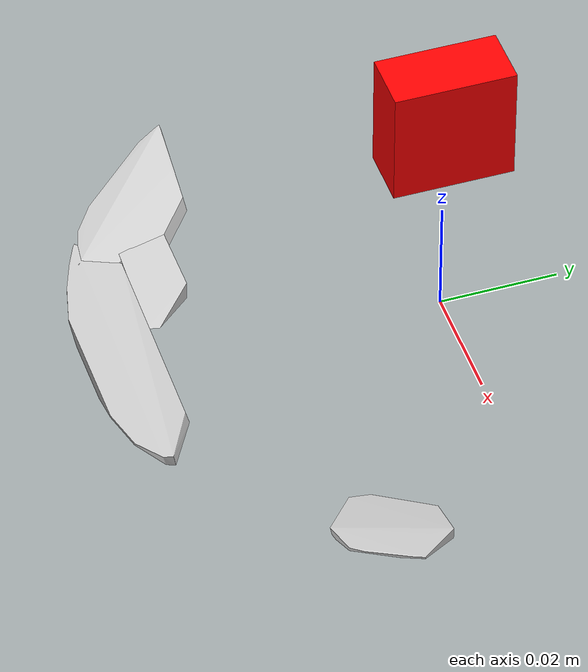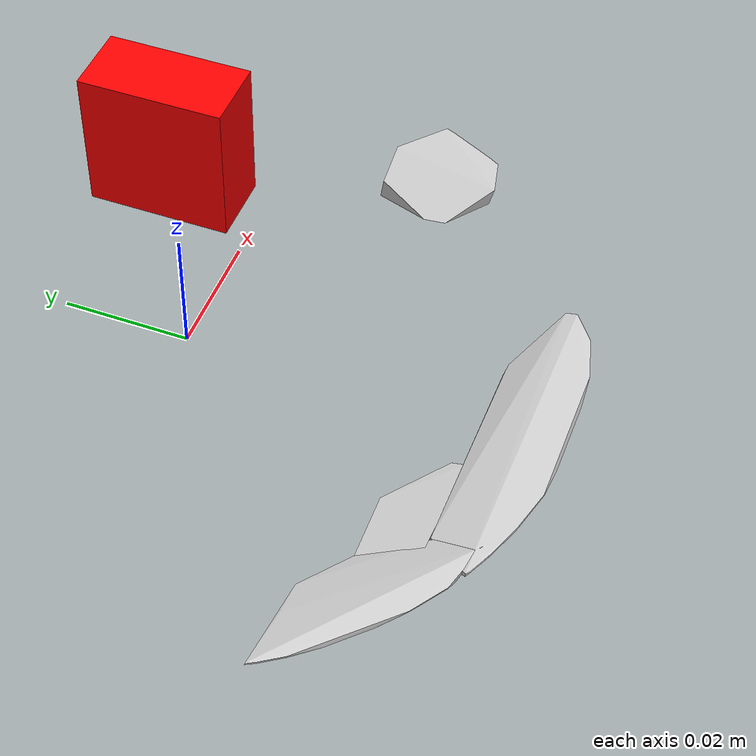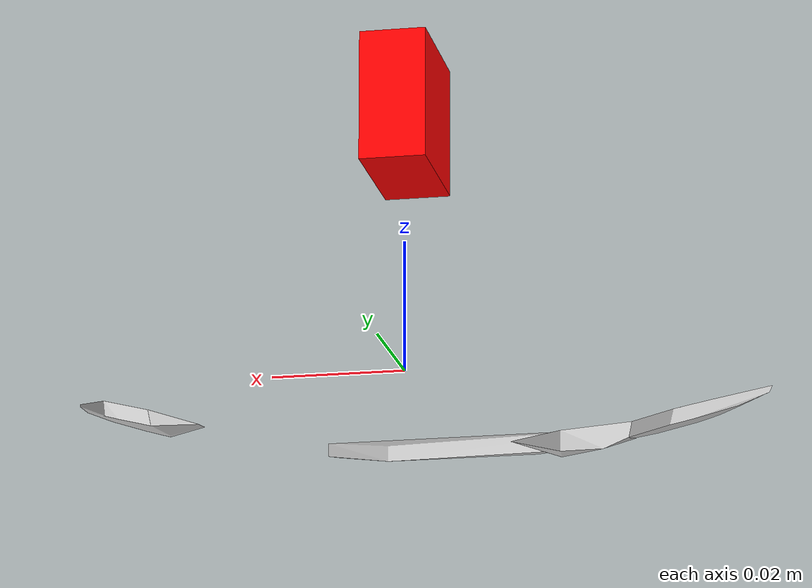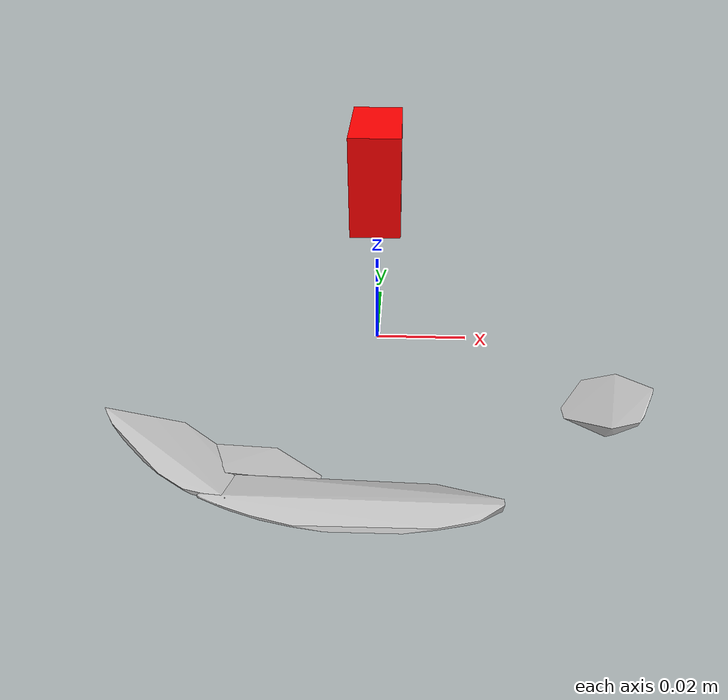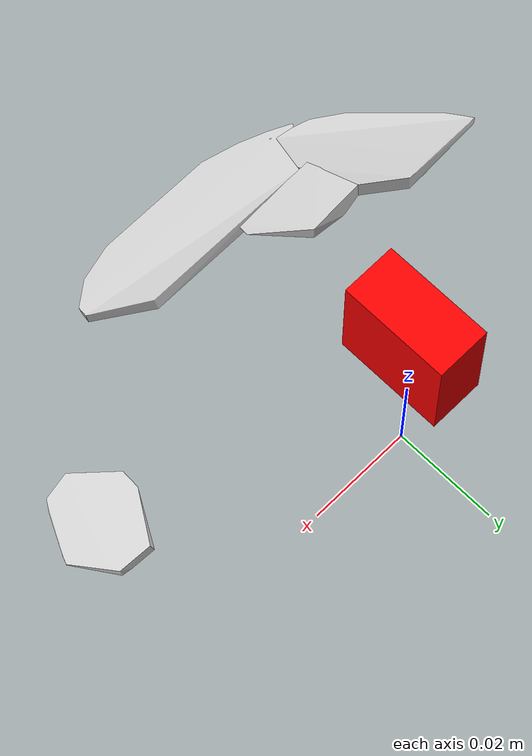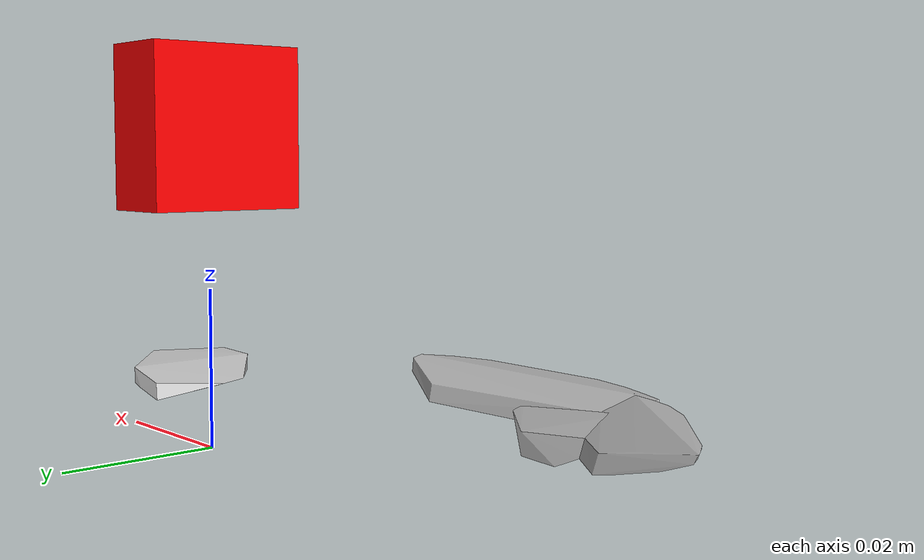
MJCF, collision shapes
<mujoco>
  <compiler angle="radian" autolimits="true"/>
  <worldbody>
    <body name="mug" pos="0 0 0">
      <freejoint/>
      <geom type="mesh" mesh="mug_vis" group="2" conaffinity="0" contype="0"/>
      <geom type="mesh" mesh="mug_col0" group="3" rgba="0.8 0.8 0.8 0"/>
      <geom type="mesh" mesh="mug_col1" group="3" rgba="0.8 0.8 0.8 0"/>
      <geom type="mesh" mesh="mug_col2" group="3" rgba="0.8 0.8 0.8 0"/>
      <geom type="mesh" mesh="mug_col3" group="3" rgba="0.8 0.8 0.8 0"/>
    </body>
    <body name="probe" pos="0 0 0.04" mocap="true">
      <geom type="box" size="0.005 0.01 0.01" group="0" rgba="1 0 0 1"/>
    </body>
  </worldbody>
  <asset>
    <mesh file="../mug_6/visual/model_normalized_0.obj" name="mug_vis" scale="0.12 0.12 0.12" refquat="0.7071067811865472 0.0 0.0 0.7071067811865476"/>
    <mesh file="../mug_6/collision/model_normalized_collision_0.obj" name="mug_col0" scale="0.12 0.12 0.12" refquat="0.7071067811865472 0.0 0.0 0.7071067811865476"/>
    <mesh file="../mug_6/collision/model_normalized_collision_1.obj" name="mug_col1" scale="0.12 0.12 0.12" refquat="0.7071067811865472 0.0 0.0 0.7071067811865476"/>
    <mesh file="../mug_6/collision/model_normalized_collision_2.obj" name="mug_col2" scale="0.12 0.12 0.12" refquat="0.7071067811865472 0.0 0.0 0.7071067811865476"/>
    <mesh file="../mug_6/collision/model_normalized_collision_3.obj" name="mug_col3" scale="0.12 0.12 0.12" refquat="0.7071067811865472 0.0 0.0 0.7071067811865476"/>
  </asset>
</mujoco>
